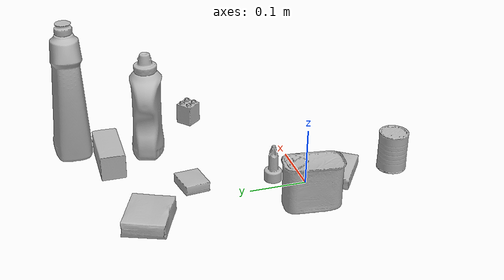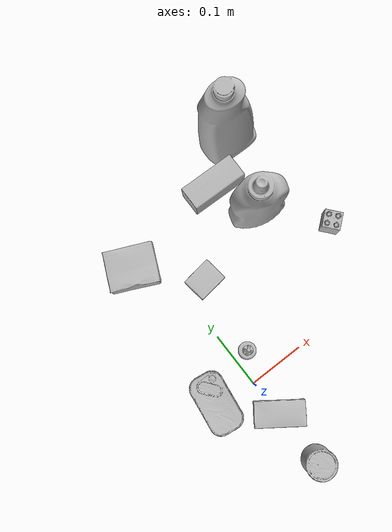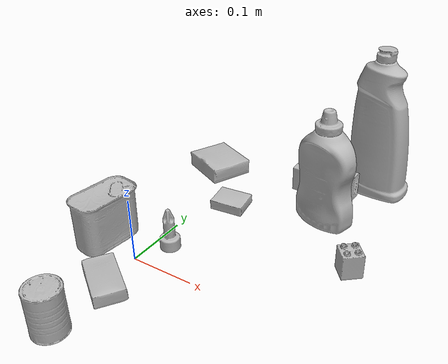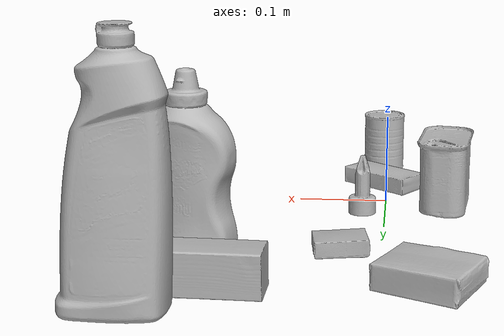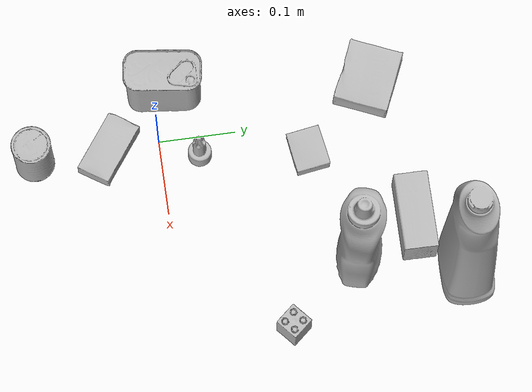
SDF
<sdf version="1.4">
  <world name="default">
    <light name="light1" type="point">
      <pose>0 0 1 0 0 0</pose>
      <diffuse>3 3 3 1</diffuse>
      <specular>3 3 3 1</specular>
    </light>
    <light name="light2" type="point">
      <pose>0 0.5 2 0 0 0</pose>
      <diffuse>1 1 1 1</diffuse>
      <specular>1 1 1 1</specular>
    </light>
    <light name="light3" type="point">
      <pose>0 0.5 2 0 0 0</pose>
      <diffuse>3 3 3 1</diffuse>
      <specular>3 3 3 1</specular>
    </light>
    <scene>
      <ambient>0.7 0.7 0.7</ambient>
    </scene>
    <model name="bottle1">
      <link name="link_bottle1">
        <collision name="default">
          <geometry>
            <mesh>
              <uri>model://bleach_cleanser/collision_meshes/collision.obj</uri>
              <scale>1.0 1.0 1.0</scale>
            </mesh>
          </geometry>
          <surface>
            <friction>
              <ode>
                <mu>0.5</mu>
                <mu2>0.5</mu2>
              </ode>
            </friction>
          <contact>
        <ode>
            <max_vel>0</max_vel>
            <min_depth>0.0001</min_depth>
            <kp>1e8</kp>
        </ode>
    </contact></surface>
        </collision>
        <visual name="default">
          <geometry>
            <mesh>
              <uri>model://bleach_cleanser/visual_meshes/visual.dae</uri>
              <scale>1.0 1.0 1.0</scale>
            </mesh>
          </geometry>
        </visual>
        <inertial>
          <mass>1.578364610671997</mass>
          <pose>0.00012193182919872925 0.003783882362768054 -0.024421613663434982 -0.07381669869228723 0.000420116582496686 -0.006875050642452563</pose>
          <inertia>
            <ixx>0.00768213</ixx>
            <iyy>0.0071586203</iyy>
            <izz>0.0013134446</izz>
            <ixy>0</ixy>
            <ixz>0</ixz>
            <iyz>0</iyz>
          </inertia>
        </inertial>
      </link>
      <pose>0.22574986517429352 0.36609944701194763 0.12578414380550385 -0.00020099022282706226 1.5781819242880146e-05 1.5705666983085176</pose>
    </model>
    <model name="bottle2">
      <link name="link_bottle2">
        <collision name="default">
          <geometry>
            <mesh>
              <uri>model://mustard_bottle/collision_meshes/collision.obj</uri>
              <scale>1.0 1.0 1.0</scale>
            </mesh>
          </geometry>
          <surface>
            <friction>
              <ode>
                <mu>0.5</mu>
                <mu2>0.5</mu2>
              </ode>
            </friction>
          <contact>
        <ode>
            <max_vel>0</max_vel>
            <min_depth>0.0001</min_depth>
            <kp>1e8</kp>
        </ode>
    </contact></surface>
        </collision>
        <visual name="default">
          <geometry>
            <mesh>
              <uri>model://mustard_bottle/visual_meshes/visual.dae</uri>
              <scale>1.0 1.0 1.0</scale>
            </mesh>
          </geometry>
        </visual>
        <inertial>
          <mass>0.5896905064582825</mass>
          <pose>0.000503245391882956 -0.00015647403779439628 -0.0174757931381464 0.00041823284967905286 0.0009465779461724547 0.024853724225743102</pose>
          <inertia>
            <ixx>0.00163749</ixx>
            <iyy>0.0014367587</iyy>
            <izz>0.00043156123</izz>
            <ixy>0</ixy>
            <ixz>0</ixz>
            <iyz>0</iyz>
          </inertia>
        </inertial>
      </link>
      <pose>0.18728868663311005 0.23363132774829865 0.09583087265491486 -0.012050501817149431 -0.0048891646210764686 1.2839863085732908</pose>
    </model>
    <model name="toy1">
      <link name="link_toy1">
        <collision name="default">
          <geometry>
            <mesh>
              <uri>model://b_lego_duplo/collision_meshes/collision.obj</uri>
              <scale>1.0 1.0 1.0</scale>
            </mesh>
          </geometry>
          <surface>
            <friction>
              <ode>
                <mu>0.5</mu>
                <mu2>0.5</mu2>
              </ode>
            </friction>
          <contact>
        <ode>
            <max_vel>0</max_vel>
            <min_depth>0.0001</min_depth>
            <kp>1e8</kp>
        </ode>
    </contact></surface>
        </collision>
        <visual name="default">
          <geometry>
            <mesh>
              <uri>model://b_lego_duplo/visual_meshes/visual.dae</uri>
              <scale>1.0 1.0 1.0</scale>
            </mesh>
          </geometry>
        </visual>
        <inertial>
          <mass>0.04927889630198479</mass>
          <pose>-0.00011053016351070255 -9.152428901870735e-06 0.0019294293597340584 -0.03749545918935276 -0.026353596882306905 0.4519115393215097</pose>
          <inertia>
            <ixx>1.0085294e-05</ixx>
            <iyy>1.015309e-05</iyy>
            <izz>8.985672e-06</izz>
            <ixy>0</ixy>
            <ixz>0</ixz>
            <iyz>0</iyz>
          </inertia>
        </inertial>
      </link>
      <pose>0.27554208040237427 0.13709460198879242 0.02181500755250454 1.738658005219408e-06 3.454755797800639e-06 -2.4364045418531974</pose>
    </model>
    <model name="toy2">
      <link name="link_toy2">
        <collision name="default">
          <geometry>
            <mesh>
              <uri>model://d_toy_airplane/collision_meshes/collision.obj</uri>
              <scale>1.0 1.0 1.0</scale>
            </mesh>
          </geometry>
          <surface>
            <friction>
              <ode>
                <mu>0.5</mu>
                <mu2>0.5</mu2>
              </ode>
            </friction>
          <contact>
        <ode>
            <max_vel>0</max_vel>
            <min_depth>0.0001</min_depth>
            <kp>1e8</kp>
        </ode>
    </contact></surface>
        </collision>
        <visual name="default">
          <geometry>
            <mesh>
              <uri>model://d_toy_airplane/visual_meshes/visual.dae</uri>
              <scale>1.0 1.0 1.0</scale>
            </mesh>
          </geometry>
        </visual>
        <inertial>
          <mass>0.023543989285826683</mass>
          <pose>9.41029647947289e-05 -5.8093268307857215e-05 -0.011728093028068542 0.0002670074791080515 0.004678977428991067 0.5194709842729006</pose>
          <inertia>
            <ixx>7.058034e-06</ixx>
            <iyy>7.063356e-06</iyy>
            <izz>2.1308651e-06</izz>
            <ixy>0</ixy>
            <ixz>0</ixz>
            <iyz>0</iyz>
          </inertia>
        </inertial>
      </link>
      <pose>0.025768939405679703 0.05059650540351868 0.03333890810608864 0.00024434531835024355 -9.203717536085369e-05 -1.70957299676951</pose>
    </model>
    <model name="can1">
      <link name="link_can1">
        <collision name="default">
          <geometry>
            <mesh>
              <uri>model://master_chef_can/collision_meshes/collision.obj</uri>
              <scale>0.5 0.5 0.5</scale>
            </mesh>
          </geometry>
          <surface>
            <friction>
              <ode>
                <mu>0.5</mu>
                <mu2>0.5</mu2>
              </ode>
            </friction>
          <contact>
        <ode>
            <max_vel>0</max_vel>
            <min_depth>0.0001</min_depth>
            <kp>1e8</kp>
        </ode>
    </contact></surface>
        </collision>
        <visual name="default">
          <geometry>
            <mesh>
              <uri>model://master_chef_can/visual_meshes/visual.dae</uri>
              <scale>0.5 0.5 0.5</scale>
            </mesh>
          </geometry>
        </visual>
        <inertial>
          <mass>0.13489052653312683</mass>
          <pose>-4.6619643399026245e-05 1.392684936263322e-07 -5.080000119050965e-05 -0.0017995055981966167 0.0006479432683086387 -0.6102521024359563</pose>
          <inertia>
            <ixx>7.9171594e-05</ixx>
            <iyy>7.85889e-05</iyy>
            <izz>4.3748354e-05</izz>
            <ixy>0</ixy>
            <ixz>0</ixz>
            <iyz>0</iyz>
          </inertia>
        </inertial>
      </link>
      <pose>0.006194156128913164 -0.16325689852237701 0.03530199080705643 -1.6046002622848978e-06 -1.1632596124181371e-06 2.729629586392698</pose>
    </model>
    <model name="can2">
      <link name="link_can2">
        <collision name="default">
          <geometry>
            <mesh>
              <uri>model://potted_meat_can/collision_meshes/collision.obj</uri>
              <scale>1.0 1.0 1.0</scale>
            </mesh>
          </geometry>
          <surface>
            <friction>
              <ode>
                <mu>0.5</mu>
                <mu2>0.5</mu2>
              </ode>
            </friction>
          <contact>
        <ode>
            <max_vel>0</max_vel>
            <min_depth>0.0001</min_depth>
            <kp>1e8</kp>
        </ode>
    </contact></surface>
        </collision>
        <visual name="default">
          <geometry>
            <mesh>
              <uri>model://potted_meat_can/visual_meshes/visual.dae</uri>
              <scale>1.0 1.0 1.0</scale>
            </mesh>
          </geometry>
        </visual>
        <inertial>
          <mass>0.4512253701686859</mass>
          <pose>0.00022888150124344975 -5.9891150158364326e-05 -0.0006367433816194534 -0.028093371406289817 -0.007232609295346345 0.015406271951796056</pose>
          <inertia>
            <ixx>0.00058045425</ixx>
            <iyy>0.00035267006</iyy>
            <izz>0.00042216998</izz>
            <ixy>0</ixy>
            <ixz>0</ixz>
            <iyz>0</iyz>
          </inertia>
        </inertial>
      </link>
      <pose>-0.06668912619352341 0.01585976779460907 0.042128000408411026 6.250490088643538e-08 -4.475213821221839e-07 3.003961983194724</pose>
    </model>
    <model name="box1">
      <link name="link_box1">
        <collision name="default">
          <geometry>
            <mesh>
              <uri>model://pudding_box/collision_meshes/collision.obj</uri>
              <scale>0.5 0.5 0.5</scale>
            </mesh>
          </geometry>
          <surface>
            <friction>
              <ode>
                <mu>0.5</mu>
                <mu2>0.5</mu2>
              </ode>
            </friction>
          <contact>
        <ode>
            <max_vel>0</max_vel>
            <min_depth>0.0001</min_depth>
            <kp>1e8</kp>
        </ode>
    </contact></surface>
        </collision>
        <visual name="default">
          <geometry>
            <mesh>
              <uri>model://pudding_box/visual_meshes/visual.dae</uri>
              <scale>0.5 0.5 0.5</scale>
            </mesh>
          </geometry>
        </visual>
        <inertial>
          <mass>0.02510015107691288</mass>
          <pose>0.00024474109522998333 0.0004033942532259971 -0.0002594413817860186 0.005213101332996491 -0.0066037987089797995 0.020079823298230236</pose>
          <inertia>
            <ixx>7.093607e-06</ixx>
            <iyy>4.7726294e-06</iyy>
            <izz>1.04755645e-05</izz>
            <ixy>0</ixy>
            <ixz>0</ixz>
            <iyz>0</iyz>
          </inertia>
        </inertial>
      </link>
      <pose>0.04223284870386124 0.1902998685836792 0.009862902574241161 0.022348514412125348 -0.01139175709432616 1.7128609102124386</pose>
    </model>
    <model name="box2">
      <link name="link_box2">
        <collision name="default">
          <geometry>
            <mesh>
              <uri>model://gelatin_box/collision_meshes/collision.obj</uri>
              <scale>1.0 1.0 1.0</scale>
            </mesh>
          </geometry>
          <surface>
            <friction>
              <ode>
                <mu>0.5</mu>
                <mu2>0.5</mu2>
              </ode>
            </friction>
          <contact>
        <ode>
            <max_vel>0</max_vel>
            <min_depth>0.0001</min_depth>
            <kp>1e8</kp>
        </ode>
    </contact></surface>
        </collision>
        <visual name="default">
          <geometry>
            <mesh>
              <uri>model://gelatin_box/visual_meshes/visual.dae</uri>
              <scale>1.0 1.0 1.0</scale>
            </mesh>
          </geometry>
        </visual>
        <inertial>
          <mass>0.2452477514743805</mass>
          <pose>0.000431961816502735 0.00011156871187267825 -0.0003640321083366871 -0.0010503720803081407 -0.004755818225601415 0.01644055574590794</pose>
          <inertia>
            <ixx>0.0001731249</ixx>
            <iyy>0.0001236622</iyy>
            <izz>0.00026353472</izz>
            <ixy>0</ixy>
            <ixz>0</ixz>
            <iyz>0</iyz>
          </inertia>
        </inertial>
      </link>
      <pose>-0.04506397247314453 0.2834767699241638 0.01516831573098898 0.00559736972723152 -0.007304449686688838 -2.00290173583687</pose>
    </model>
    <model name="box3">
      <link name="link_box3">
        <collision name="default">
          <geometry>
            <mesh>
              <uri>model://sugar_box/collision_meshes/collision.obj</uri>
              <scale>0.5 0.5 0.5</scale>
            </mesh>
          </geometry>
          <surface>
            <friction>
              <ode>
                <mu>0.5</mu>
                <mu2>0.5</mu2>
              </ode>
            </friction>
          <contact>
        <ode>
            <max_vel>0</max_vel>
            <min_depth>0.0001</min_depth>
            <kp>1e8</kp>
        </ode>
    </contact></surface>
        </collision>
        <visual name="default">
          <geometry>
            <mesh>
              <uri>model://sugar_box/visual_meshes/visual.dae</uri>
              <scale>0.5 0.5 0.5</scale>
            </mesh>
          </geometry>
        </visual>
        <inertial>
          <mass>0.12277840822935104</mass>
          <pose>0.0005171863595023751 1.9245549992774613e-05 -0.00018182402709499002 -0.0004046257474220826 0.0010506635214397083 0.0026153787892127145</pose>
          <inertia>
            <ixx>2.5574656e-05</ixx>
            <iyy>8.2662555e-05</iyy>
            <izz>9.895694e-05</izz>
            <ixy>0</ixy>
            <ixz>0</ixz>
            <iyz>0</iyz>
          </inertia>
        </inertial>
      </link>
      <pose>0.004121215548366308 -0.06570691615343094 0.011399299837648869 0.0007755618075307618 -0.02343328096382663 -0.6149170806102101</pose>
    </model>
    <model name="box4">
      <link name="link_box4">
        <collision name="default">
          <geometry>
            <mesh>
              <uri>model://wood_block/collision_meshes/collision.obj</uri>
              <scale>0.5 0.5 0.5</scale>
            </mesh>
          </geometry>
          <surface>
            <friction>
              <ode>
                <mu>0.5</mu>
                <mu2>0.5</mu2>
              </ode>
            </friction>
          <contact>
        <ode>
            <max_vel>0</max_vel>
            <min_depth>0.0001</min_depth>
            <kp>1e8</kp>
        </ode>
    </contact></surface>
        </collision>
        <visual name="default">
          <geometry>
            <mesh>
              <uri>model://wood_block/visual_meshes/visual.dae</uri>
              <scale>0.5 0.5 0.5</scale>
            </mesh>
          </geometry>
        </visual>
        <inertial>
          <mass>0.2967980206012726</mass>
          <pose>-2.9066577553749084e-06 -0.00028540470520965755 0.00013204291462898254 -0.05220902064674581 -0.005192696668457315 -0.006861378272965977</pose>
          <inertia>
            <ixx>9.929016e-05</ixx>
            <iyy>0.00031365763</iyy>
            <izz>0.00031248436</izz>
            <ixy>0</ixy>
            <ixz>0</ixz>
            <iyz>0</iyz>
          </inertia>
        </inertial>
      </link>
      <pose>0.15403705835342407 0.31216180324554443 0.022629264742136 -0.00520863444928104 0.0057187221760315494 -0.016219313489594107</pose>
    </model>
  <physics type="ode">
      <max_contacts>50</max_contacts>
      <ode>
        <solver>
          <type>quick</type>
          <iters>75</iters>
        </solver>
        <constraints>
          <contact_max_correcting_vel>0</contact_max_correcting_vel>
          <contact_surface_layer>0</contact_surface_layer>
        </constraints>
      </ode>
    </physics></world>
</sdf>
